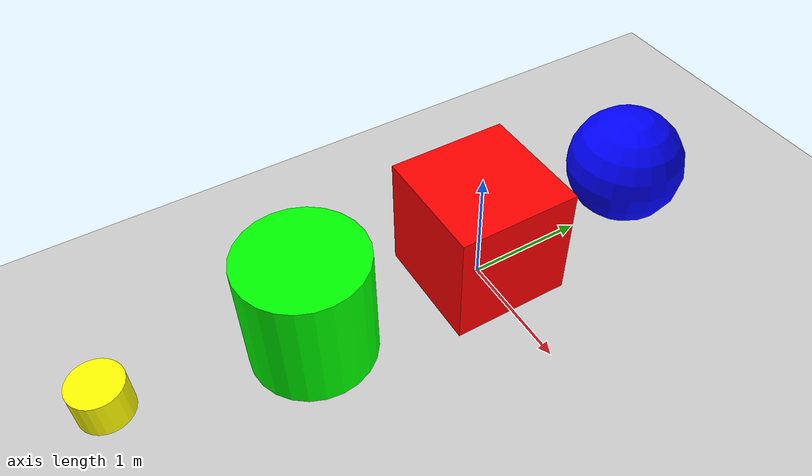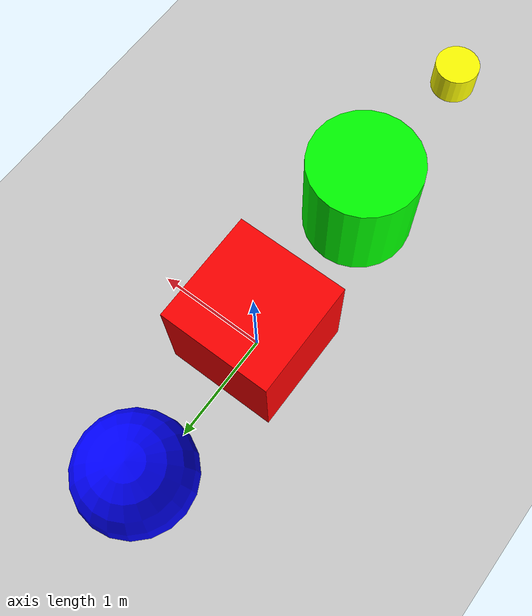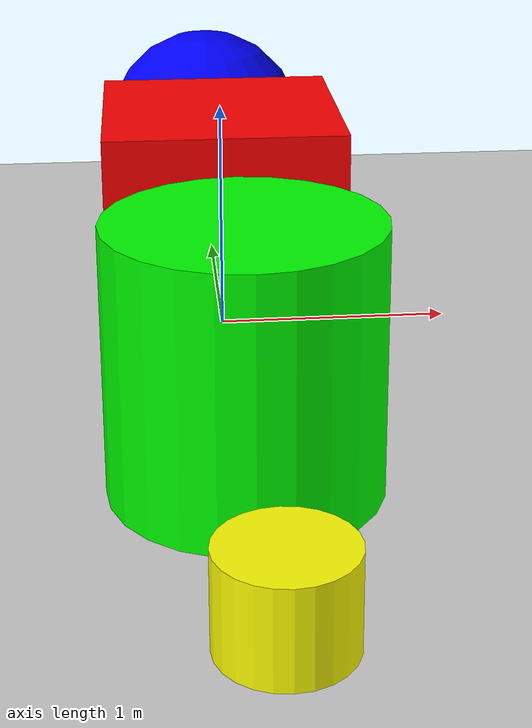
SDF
<?xml version="1.0" ?>
<sdf version="1.6">
  <world name="default">
    <plugin
      filename="libignition-gazebo-scene-broadcaster-system.so"
      name="ignition::gazebo::systems::SceneBroadcaster">
    </plugin>
    <plugin
     filename="libignition-gazebo-physics-system.so"
     name="ignition::gazebo::systems::Physics">
    </plugin>

  <gui fullscreen="0">

      <!-- 3D scene -->
      <plugin filename="Scene3D" name="3D View">
        <ignition-gui>
          <title>3D View</title>
          <property type="bool" key="showTitleBar">false</property>
          <property type="string" key="state">docked</property>
        </ignition-gui>

        <engine>ogre</engine>
        <scene>scene</scene>
        <ambient_light>0.4 0.4 0.4</ambient_light>
        <background_color>0.8 0.8 0.8</background_color>
        <camera_pose>-6 0 6 0 0.5 0</camera_pose>
        <service>/world/default/scene/info</service>
        <pose_topic>/world/default/pose/info</pose_topic>
        <scene_topic>/world/default/scene/info</scene_topic>
        <deletion_topic>/world/default/scene/deletion</deletion_topic>
      </plugin>

      <!-- World control -->
      <plugin filename="WorldControl" name="World control">
        <ignition-gui>
          <title>World control</title>
          <property type="bool" key="showTitleBar">false</property>
          <property type="bool" key="resizable">false</property>
          <property type="double" key="height">72</property>
          <property type="double" key="width">121</property>
          <property type="double" key="z">1</property>

          <property type="string" key="state">floating</property>
          <anchors target="3D View">
            <line own="left" target="left"/>
            <line own="bottom" target="bottom"/>
          </anchors>
        </ignition-gui>

        <play_pause>true</play_pause>
        <step>true</step>
        <start_paused>true</start_paused>
        <service>/world/default/control</service>
        <stats_topic>/world/default/stats</stats_topic>

      </plugin>

      <!--World statistics -->
      <plugin filename="WorldStats" name="World stats">
        <ignition-gui>
          <title>World stats</title>
          <property type="bool" key="showTitleBar">false</property>
          <property type="bool" key="resizable">false</property>
          <property type="double" key="height">110</property>
          <property type="double" key="width">290</property>
          <property type="double" key="z">1</property>

          <property type="string" key="state">floating</property>
          <anchors target="3D View">
            <line own="right" target="right"/>
            <line own="bottom" target="bottom"/>
          </anchors>
        </ignition-gui>

        <sim_time>true</sim_time>
        <real_time>true</real_time>
        <real_time_factor>true</real_time_factor>
        <iterations>true</iterations>
        <topic>/world/default/stats</topic>

      </plugin>

    </gui>

    <scene>
      <ambient>0.8 0.8 0.8 1.0</ambient>
      <background>0.34 0.39 0.43 1.0</background>
      <grid>false</grid>
      <origin_visual>false</origin_visual>
    </scene>

    <light type="directional" name="sun">
      <cast_shadows>true</cast_shadows>
      <pose>0 0 10 0 0 0</pose>
      <diffuse>0.8 0.8 0.8 1</diffuse>
      <specular>0.2 0.2 0.2 1</specular>
      <attenuation>
        <range>1000</range>
        <constant>0.9</constant>
        <linear>0.01</linear>
        <quadratic>0.001</quadratic>
      </attenuation>
      <direction>-0.5 0.1 -0.9</direction>
    </light>

    <model name="ground_plane">
      <static>true</static>
      <pose>0 0 -0.5 0 0.52 0</pose>
      <link name="link">
        <collision name="collision">
          <geometry>
            <plane>
              <normal>0 0 1</normal>
            </plane>
          </geometry>
        </collision>
        <visual name="visual">
          <geometry>
            <plane>
              <normal>0 0 1</normal>
              <size>100 100</size>
            </plane>
          </geometry>
          <material>
            <ambient>0.8 0.8 0.8 1</ambient>
            <diffuse>0.8 0.8 0.8 1</diffuse>
            <specular>0.8 0.8 0.8 1</specular>
          </material>
        </visual>
      </link>
    </model>

    <model name="box">
      <pose>0 0 0.5 0 0 0</pose>
      <link name="box_link">
        <inertial>
          <inertia>
            <ixx>1</ixx>
            <ixy>0</ixy>
            <ixz>0</ixz>
            <iyy>1</iyy>
            <iyz>0</iyz>
            <izz>1</izz>
          </inertia>
          <mass>1.0</mass>
        </inertial>
        <collision name="box_collision">
          <geometry>
            <box>
              <size>1 1 1</size>
            </box>
          </geometry>
        </collision>

        <visual name="box_visual">
          <geometry>
            <box>
              <size>1 1 1</size>
            </box>
          </geometry>
          <material>
            <ambient>1 0 0 1</ambient>
            <diffuse>1 0 0 1</diffuse>
            <specular>1 0 0 1</specular>
          </material>
        </visual>
      </link>
    </model>

    <model name="cylinder">
      <pose>0 -1.5 0.5 0 0 0</pose>
      <link name="cylinder_link">
        <inertial>
          <inertia>
            <ixx>2</ixx>
            <ixy>0</ixy>
            <ixz>0</ixz>
            <iyy>2</iyy>
            <iyz>0</iyz>
            <izz>2</izz>
          </inertia>
          <mass>2.0</mass>
        </inertial>
        <collision name="cylinder_collision">
          <geometry>
            <cylinder>
              <radius>0.5</radius>
              <length>1.0</length>
            </cylinder>
          </geometry>
        </collision>

        <visual name="cylinder_visual">
          <geometry>
            <cylinder>
              <radius>0.5</radius>
              <length>1.0</length>
            </cylinder>
          </geometry>
          <material>
            <ambient>0 1 0 1</ambient>
            <diffuse>0 1 0 1</diffuse>
            <specular>0 1 0 1</specular>
          </material>
        </visual>
      </link>
      <link name="cylinder_link2">
        <pose>0 -1.5 0 0 0 0</pose>
        <inertial>
          <inertia>
            <ixx>0.01</ixx>
            <ixy>0</ixy>
            <ixz>0</ixz>
            <iyy>0.01</iyy>
            <iyz>0</iyz>
            <izz>0.01</izz>
          </inertia>
          <mass>0.1</mass>
        </inertial>
        <collision name="cylinder_collision">
          <geometry>
            <cylinder>
              <radius>0.2</radius>
              <length>0.3</length>
            </cylinder>
          </geometry>
        </collision>

        <visual name="cylinder_visual">
          <geometry>
            <cylinder>
              <radius>0.2</radius>
              <length>0.3</length>
            </cylinder>
          </geometry>
          <material>
            <ambient>1 1 0 1</ambient>
            <diffuse>1 1 0 1</diffuse>
            <specular>1 1 0 1</specular>
          </material>
        </visual>
      </link>
    </model>

    <model name="sphere">
      <pose>0 1.5 0.5 0 0 0</pose>
      <link name="sphere_link">
        <inertial>
          <inertia>
            <ixx>3</ixx>
            <ixy>0</ixy>
            <ixz>0</ixz>
            <iyy>3</iyy>
            <iyz>0</iyz>
            <izz>3</izz>
          </inertia>
          <mass>3.0</mass>
        </inertial>
        <collision name="sphere_collision">
          <geometry>
            <sphere>
              <radius>0.5</radius>
            </sphere>
          </geometry>
        </collision>

        <visual name="sphere_visual">
          <geometry>
            <sphere>
              <radius>0.5</radius>
            </sphere>
          </geometry>
          <material>
            <ambient>0 0 1 1</ambient>
            <diffuse>0 0 1 1</diffuse>
            <specular>0 0 1 1</specular>
          </material>
        </visual>
      </link>
    </model>

    <plugin name="ignition::gazebo" filename="dummy">

      <performer name="perf_sphere">
        <ref>sphere</ref>
        <geometry>
          <box>
            <size>1 1 1</size>
          </box>
        </geometry>
      </performer>

      <performer name="perf_cylinder">
        <ref>cylinder</ref>
        <geometry>
          <box>
            <size>1 1 1</size>
          </box>
        </geometry>
      </performer>

      <performer name="perf_box">
        <ref>box</ref>
        <geometry>
          <box>
            <size>1 1 1</size>
          </box>
        </geometry>
      </performer>

    </plugin>

  </world>
</sdf>
